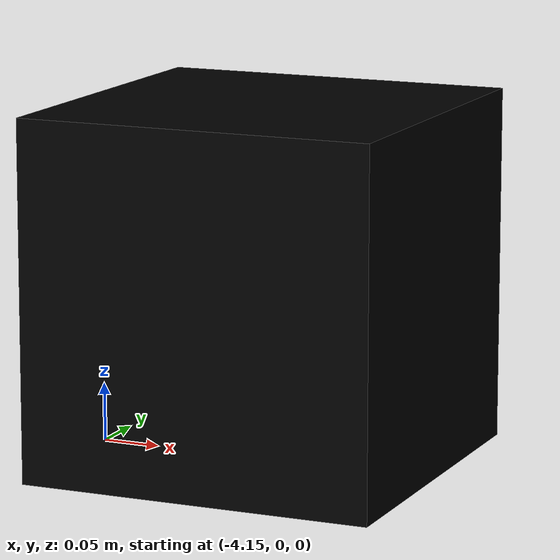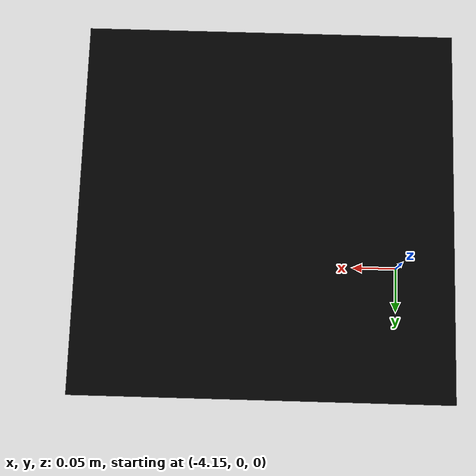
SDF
<?xml version='1.0'?>
<sdf version='1.4'>
  <model name="AruCo_Block_13">
    <static>true</static>
    <link name='chassis'>
            <pose>-4 0 0.15 0 0 0</pose>

            <collision name='collision'>
              <geometry>
                <box>
                  <size>.3 .3 .3</size>
                </box>
              </geometry>
            </collision>

            <visual name='visual_13'>
              <geometry>
                <box>
                  <size>.3 .3 .3</size>
                </box>
              </geometry>
              <material>
                <script>
                <uri>model://AruCo_Block_13/materials/scripts</uri>
                <uri>model://AruCo_Block_13/materials/textures</uri>
                <name>block13</name>
                </script>
                <ambient>0 0 0 1</ambient>
                <diffuse>0 0 0 1</diffuse>
                <specular>0 0 0 0</specular>
                <emissive>1 1 1 1</emissive>
              </material>
            </visual>
          </link>
  </model>
</sdf>
